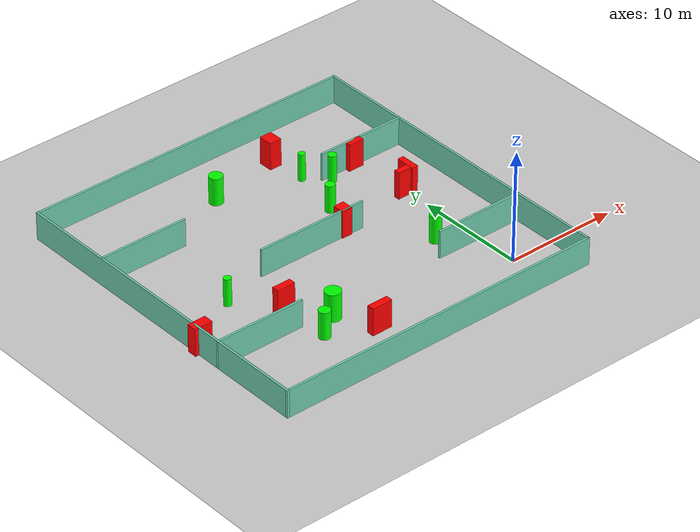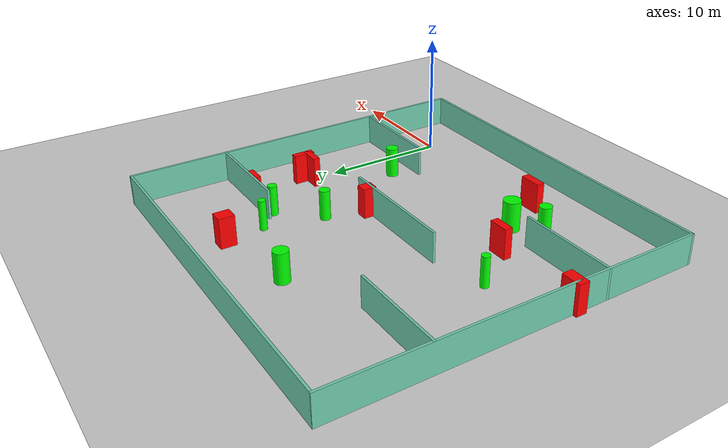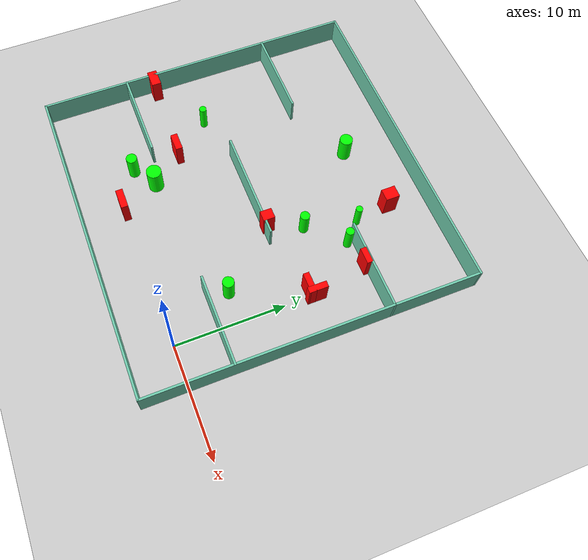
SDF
<sdf version="1.7">
 <world name="default">
  <light name="sun" type="directional">
   <pose>0 0 10 0 -0 0</pose>
   <diffuse>0.8 0.8 0.8 1</diffuse>
   <specular>0.2 0.2 0.2 1</specular>
   <attenuation>
    <range>1000</range>
    <constant>0.9</constant>
    <linear>0.01</linear>
    <quadratic>0.001</quadratic>
   </attenuation>
   <direction>-0.5 0.1 -0.9</direction>
   <spot><inner_angle>0</inner_angle><outer_angle>0</outer_angle><falloff>0</falloff></spot>
  </light>
  <model name="ground_plane">
   <static>1</static>
   <link name="link">
    <collision name="collision">
     <geometry><plane><normal>0 0 1</normal><size>100 100</size></plane></geometry>
     <surface>
      <contact><collide_bitmask>65535</collide_bitmask></contact>
      <friction><ode><mu>100</mu><mu2>50</mu2></ode></friction>
     </surface>
    </collision>
    <visual name="visual">
     <cast_shadows>0</cast_shadows>
     <geometry><plane><normal>0 0 1</normal><size>100 100</size></plane></geometry>
     <material>
      <script><uri>file://media/materials/scripts/gazebo.material</uri><name>Gazebo/Grey</name></script>
     </material>
    </visual>
   </link>
  </model>
  <gravity>0 0 -9.8</gravity>
  <magnetic_field>6e-06 2.3e-05 -4.2e-05</magnetic_field>
  <atmosphere type="adiabatic"/>
  <physics type="ode">
   <max_step_size>0.001</max_step_size>
   <real_time_factor>1</real_time_factor>
   <real_time_update_rate>1000</real_time_update_rate>
  </physics>
  <scene><ambient>0.4 0.4 0.4 1</ambient><background>0.7 0.7 0.7 1</background><shadows>1</shadows></scene>
  <spherical_coordinates>
   <surface_model>EARTH_WGS84</surface_model>
   <latitude_deg>0</latitude_deg>
   <longitude_deg>0</longitude_deg>
   <elevation>0</elevation>
   <heading_deg>0</heading_deg>
  </spherical_coordinates>
  <model name="my_base_walls">
   <link name="Wall_10">
    <collision name="Wall_10_Collision">
     <geometry><box><size>8.2 0.2 2.5</size></box></geometry>
     <pose>0 0 1.25 0 -0 0</pose>
    </collision>
    <visual name="Wall_10_Visual">
     <pose>0 0 1.25 0 -0 0</pose>
     <geometry><box><size>8.2 0.2 2.5</size></box></geometry>
     <material>
      <script><uri>file://media/materials/scripts/gazebo.material</uri><name>Gazebo/Grey</name></script>
      <ambient>0.435294 0.796078 0.67451 1</ambient>
     </material>
     <meta><layer>0</layer></meta>
    </visual>
    <pose>-11 -7 0 0 -0 0</pose>
   </link>
   <link name="Wall_12">
    <collision name="Wall_12_Collision">
     <geometry><box><size>8.2 0.2 2.5</size></box></geometry>
     <pose>0 0 1.25 0 -0 0</pose>
    </collision>
    <visual name="Wall_12_Visual">
     <pose>0 0 1.25 0 -0 0</pose>
     <geometry><box><size>8.2 0.2 2.5</size></box></geometry>
     <material>
      <script><uri>file://media/materials/scripts/gazebo.material</uri><name>Gazebo/Grey</name></script>
      <ambient>0.435294 0.796078 0.67451 1</ambient>
     </material>
     <meta><layer>0</layer></meta>
    </visual>
    <pose>-11 7 0 0 -0 0</pose>
   </link>
   <link name="Wall_14">
    <collision name="Wall_14_Collision">
     <geometry><box><size>8.2 0.2 2.5</size></box></geometry>
     <pose>0 0 1.25 0 -0 0</pose>
    </collision>
    <visual name="Wall_14_Visual">
     <pose>0 0 1.25 0 -0 0</pose>
     <geometry><box><size>8.2 0.2 2.5</size></box></geometry>
     <material>
      <script><uri>file://media/materials/scripts/gazebo.material</uri><name>Gazebo/Grey</name></script>
      <ambient>0.435294 0.796078 0.67451 1</ambient>
     </material>
     <meta><layer>0</layer></meta>
    </visual>
    <pose>11 7 0 0 -0 3.14159</pose>
   </link>
   <link name="Wall_16">
    <collision name="Wall_16_Collision">
     <geometry><box><size>10.2 0.2 2.5</size></box></geometry>
     <pose>0 0 1.25 0 -0 0</pose>
    </collision>
    <visual name="Wall_16_Visual">
     <pose>0 0 1.25 0 -0 0</pose>
     <geometry><box><size>10.2 0.2 2.5</size></box></geometry>
     <material>
      <script><uri>file://media/materials/scripts/gazebo.material</uri><name>Gazebo/Grey</name></script>
      <ambient>0.435294 0.796078 0.67451 1</ambient>
     </material>
     <meta><layer>0</layer></meta>
    </visual>
    <pose>0 0 0 0 -0 3.14159</pose>
   </link>
   <link name="Wall_2">
    <collision name="Wall_2_Collision">
     <geometry><box><size>30.2 0.2 2.5</size></box></geometry>
     <pose>0 0 1.25 0 -0 0</pose>
    </collision>
    <visual name="Wall_2_Visual">
     <pose>0 0 1.25 0 -0 0</pose>
     <geometry><box><size>30.2 0.2 2.5</size></box></geometry>
     <material>
      <script><uri>file://media/materials/scripts/gazebo.material</uri><name>Gazebo/Grey</name></script>
      <ambient>0.435294 0.796078 0.67451 1</ambient>
     </material>
     <meta><layer>0</layer></meta>
    </visual>
    <pose>0 -15 0 0 -0 3.14159</pose>
   </link>
   <link name="Wall_3">
    <collision name="Wall_3_Collision">
     <geometry><box><size>30.2 0.2 2.5</size></box></geometry>
     <pose>0 0 1.25 0 -0 0</pose>
    </collision>
    <visual name="Wall_3_Visual">
     <pose>0 0 1.25 0 -0 0</pose>
     <geometry><box><size>30.2 0.2 2.5</size></box></geometry>
     <material>
      <script><uri>file://media/materials/scripts/gazebo.material</uri><name>Gazebo/Grey</name></script>
      <ambient>0.435294 0.796078 0.67451 1</ambient>
     </material>
     <meta><layer>0</layer></meta>
    </visual>
    <pose>-15 0 0 0 -0 1.5708</pose>
   </link>
   <link name="Wall_4">
    <collision name="Wall_4_Collision">
     <geometry><box><size>30.2 0.2 2.5</size></box></geometry>
     <pose>0 0 1.25 0 -0 0</pose>
    </collision>
    <visual name="Wall_4_Visual">
     <pose>0 0 1.25 0 -0 0</pose>
     <geometry><box><size>30.2 0.2 2.5</size></box></geometry>
     <material>
      <script><uri>file://media/materials/scripts/gazebo.material</uri><name>Gazebo/Grey</name></script>
      <ambient>0.435294 0.796078 0.67451 1</ambient>
     </material>
     <meta><layer>0</layer></meta>
    </visual>
    <pose>0 15 0 0 -0 0</pose>
   </link>
   <link name="Wall_6">
    <collision name="Wall_6_Collision">
     <geometry><box><size>30.2 0.2 2.5</size></box></geometry>
     <pose>0 0 1.25 0 -0 0</pose>
    </collision>
    <visual name="Wall_6_Visual">
     <pose>0 0 1.25 0 -0 0</pose>
     <geometry><box><size>30.2 0.2 2.5</size></box></geometry>
     <material>
      <script><uri>file://media/materials/scripts/gazebo.material</uri><name>Gazebo/Grey</name></script>
      <ambient>0.435294 0.796078 0.67451 1</ambient>
     </material>
     <meta><layer>0</layer></meta>
    </visual>
    <pose>15 0 0 0 -0 1.5708</pose>
   </link>
   <link name="Wall_8">
    <collision name="Wall_8_Collision">
     <geometry><box><size>8.2 0.2 2.5</size></box></geometry>
     <pose>0 0 1.25 0 -0 0</pose>
    </collision>
    <visual name="Wall_8_Visual">
     <pose>0 0 1.25 0 -0 0</pose>
     <geometry><box><size>8.2 0.2 2.5</size></box></geometry>
     <material>
      <script><uri>file://media/materials/scripts/gazebo.material</uri><name>Gazebo/Grey</name></script>
      <ambient>0.435294 0.796078 0.67451 1</ambient>
     </material>
     <meta><layer>0</layer></meta>
    </visual>
    <pose>11 -7 0 0 -0 3.14159</pose>
   </link>
   <static>1</static>
   <pose>-11 11 0 0 -0 0</pose>
  </model>
  <model name="cylinder1">
   <static>1</static>
   <link name="link">
    <inertial>
     <mass>1</mass>
     <inertia><ixx>0.5</ixx><ixy>0</ixy><ixz>0</ixz><iyy>0.5</iyy><iyz>0</iyz><izz>1</izz></inertia>
    </inertial>
    <collision name="collision">
     <geometry><cylinder><radius>0.37215223948299025</radius><length>2.5</length></cylinder></geometry>
    </collision>
    <visual name="visual">
     <geometry><cylinder><radius>0.37215223948299025</radius><length>2.5</length></cylinder></geometry>
     <material>
      <ambient>0 1 0 1</ambient>
      <diffuse>0 1 0 1</diffuse>
      <specular>0.1 0.1 0.1 1</specular>
      <emissive>0 0 0 0</emissive>
     </material>
    </visual>
   </link>
   <pose>-3.4854072605742132 17.403984121580976 1.25 0 0 0</pose>
  </model>
  <model name="cylinder2">
   <static>1</static>
   <link name="link">
    <inertial>
     <mass>1</mass>
     <inertia><ixx>0.5</ixx><ixy>0</ixy><ixz>0</ixz><iyy>0.5</iyy><iyz>0</iyz><izz>1</izz></inertia>
    </inertial>
    <collision name="collision">
     <geometry><cylinder><radius>0.333183847070141</radius><length>2.5</length></cylinder></geometry>
    </collision>
    <visual name="visual">
     <geometry><cylinder><radius>0.333183847070141</radius><length>2.5</length></cylinder></geometry>
     <material>
      <ambient>0 1 0 1</ambient>
      <diffuse>0 1 0 1</diffuse>
      <specular>0.1 0.1 0.1 1</specular>
      <emissive>0 0 0 0</emissive>
     </material>
    </visual>
   </link>
   <pose>-20.36996918337472 9.804035120642062 1.25 0 0 0</pose>
  </model>
  <model name="cylinder3">
   <static>1</static>
   <link name="link">
    <inertial>
     <mass>1</mass>
     <inertia><ixx>0.5</ixx><ixy>0</ixy><ixz>0</ixz><iyy>0.5</iyy><iyz>0</iyz><izz>1</izz></inertia>
    </inertial>
    <collision name="collision">
     <geometry><cylinder><radius>0.42897565841203145</radius><length>2.5</length></cylinder></geometry>
    </collision>
    <visual name="visual">
     <geometry><cylinder><radius>0.42897565841203145</radius><length>2.5</length></cylinder></geometry>
     <material>
      <ambient>0 1 0 1</ambient>
      <diffuse>0 1 0 1</diffuse>
      <specular>0.1 0.1 0.1 1</specular>
      <emissive>0 0 0 0</emissive>
     </material>
    </visual>
   </link>
   <pose>-6.293158223914457 14.352922936030179 1.25 0 0 0</pose>
  </model>
  <model name="cylinder4">
   <static>1</static>
   <link name="link">
    <inertial>
     <mass>1</mass>
     <inertia><ixx>0.5</ixx><ixy>0</ixy><ixz>0</ixz><iyy>0.5</iyy><iyz>0</iyz><izz>1</izz></inertia>
    </inertial>
    <collision name="collision">
     <geometry><cylinder><radius>0.6943146130069109</radius><length>2.5</length></cylinder></geometry>
    </collision>
    <visual name="visual">
     <geometry><cylinder><radius>0.6943146130069109</radius><length>2.5</length></cylinder></geometry>
     <material>
      <ambient>0 1 0 1</ambient>
      <diffuse>0 1 0 1</diffuse>
      <specular>0.1 0.1 0.1 1</specular>
      <emissive>0 0 0 0</emissive>
     </material>
    </visual>
   </link>
   <pose>-15.37645692182866 3.3688888859838206 1.25 0 0 0</pose>
  </model>
  <model name="cylinder5">
   <static>1</static>
   <link name="link">
    <inertial>
     <mass>1</mass>
     <inertia><ixx>0.5</ixx><ixy>0</ixy><ixz>0</ixz><iyy>0.5</iyy><iyz>0</iyz><izz>1</izz></inertia>
    </inertial>
    <collision name="collision">
     <geometry><cylinder><radius>0.3059380228305129</radius><length>2.5</length></cylinder></geometry>
    </collision>
    <visual name="visual">
     <geometry><cylinder><radius>0.3059380228305129</radius><length>2.5</length></cylinder></geometry>
     <material>
      <ambient>0 1 0 1</ambient>
      <diffuse>0 1 0 1</diffuse>
      <specular>0.1 0.1 0.1 1</specular>
      <emissive>0 0 0 0</emissive>
     </material>
    </visual>
   </link>
   <pose>-5.208373326094149 19.08376229806097 1.25 0 0 0</pose>
  </model>
  <model name="cylinder6">
   <static>1</static>
   <link name="link">
    <inertial>
     <mass>1</mass>
     <inertia><ixx>0.5</ixx><ixy>0</ixy><ixz>0</ixz><iyy>0.5</iyy><iyz>0</iyz><izz>1</izz></inertia>
    </inertial>
    <collision name="collision">
     <geometry><cylinder><radius>0.597591681927181</radius><length>2.5</length></cylinder></geometry>
    </collision>
    <visual name="visual">
     <geometry><cylinder><radius>0.597591681927181</radius><length>2.5</length></cylinder></geometry>
     <material>
      <ambient>0 1 0 1</ambient>
      <diffuse>0 1 0 1</diffuse>
      <specular>0.1 0.1 0.1 1</specular>
      <emissive>0 0 0 0</emissive>
     </material>
    </visual>
   </link>
   <pose>-12.323717222869977 21.052269842131594 1.25 0 0 0</pose>
  </model>
  <model name="cylinder7">
   <static>1</static>
   <link name="link">
    <inertial>
     <mass>1</mass>
     <inertia><ixx>0.5</ixx><ixy>0</ixy><ixz>0</ixz><iyy>0.5</iyy><iyz>0</iyz><izz>1</izz></inertia>
    </inertial>
    <collision name="collision">
     <geometry><cylinder><radius>0.5080277660602867</radius><length>2.5</length></cylinder></geometry>
    </collision>
    <visual name="visual">
     <geometry><cylinder><radius>0.5080277660602867</radius><length>2.5</length></cylinder></geometry>
     <material>
      <ambient>0 1 0 1</ambient>
      <diffuse>0 1 0 1</diffuse>
      <specular>0.1 0.1 0.1 1</specular>
      <emissive>0 0 0 0</emissive>
     </material>
    </visual>
   </link>
   <pose>-2.7816024237399404 5.913493550221002 1.25 0 0 0</pose>
  </model>
  <model name="cylinder8">
   <static>1</static>
   <link name="link">
    <inertial>
     <mass>1</mass>
     <inertia><ixx>0.5</ixx><ixy>0</ixy><ixz>0</ixz><iyy>0.5</iyy><iyz>0</iyz><izz>1</izz></inertia>
    </inertial>
    <collision name="collision">
     <geometry><cylinder><radius>0.5047657749819048</radius><length>2.5</length></cylinder></geometry>
    </collision>
    <visual name="visual">
     <geometry><cylinder><radius>0.5047657749819048</radius><length>2.5</length></cylinder></geometry>
     <material>
      <ambient>0 1 0 1</ambient>
      <diffuse>0 1 0 1</diffuse>
      <specular>0.1 0.1 0.1 1</specular>
      <emissive>0 0 0 0</emissive>
     </material>
    </visual>
   </link>
   <pose>-17.448786303961565 1.8909902238019773 1.25 0 0 0</pose>
  </model>
  <model name="box1">
   <static>1</static>
   <link name="link">
    <inertial>
     <mass>1</mass>
     <inertia><ixx>0.083</ixx><ixy>0</ixy><ixz>0</ixz><iyy>0.083</iyy><iyz>0</iyz><izz>0.083</izz></inertia>
    </inertial>
    <collision name="collision">
     <geometry><box><size>1.646814002296343 0.8846157069024569 2.5</size></box></geometry>
    </collision>
    <visual name="visual">
     <geometry><box><size>1.646814002296343 0.8846157069024569 2.5</size></box></geometry>
     <material>
      <ambient>1 0 0 1</ambient>
      <diffuse>1 0 0 1</diffuse>
      <specular>0.1 0.1 0.1 1</specular>
      <emissive>0 0 0 0</emissive>
     </material>
    </visual>
    <sensor name="my_contact" type="contact">
     <contact><collision>box_collision</collision><topic>__default_topic__</topic></contact>
    </sensor>
   </link>
   <pose>-25.600002655101168 6.624869619537522 1.25 0 0 0</pose>
  </model>
  <model name="box2">
   <static>1</static>
   <link name="link">
    <inertial>
     <mass>1</mass>
     <inertia><ixx>0.083</ixx><ixy>0</ixy><ixz>0</ixz><iyy>0.083</iyy><iyz>0</iyz><izz>0.083</izz></inertia>
    </inertial>
    <collision name="collision">
     <geometry><box><size>1.1035924370785062 1.279597626355856 2.5</size></box></geometry>
    </collision>
    <visual name="visual">
     <geometry><box><size>1.1035924370785062 1.279597626355856 2.5</size></box></geometry>
     <material>
      <ambient>1 0 0 1</ambient>
      <diffuse>1 0 0 1</diffuse>
      <specular>0.1 0.1 0.1 1</specular>
      <emissive>0 0 0 0</emissive>
     </material>
    </visual>
    <sensor name="my_contact" type="contact">
     <contact><collision>box_collision</collision><topic>__default_topic__</topic></contact>
    </sensor>
   </link>
   <pose>-5.690783277207167 22.336671396697813 1.25 0 0 0</pose>
  </model>
  <model name="box3">
   <static>1</static>
   <link name="link">
    <inertial>
     <mass>1</mass>
     <inertia><ixx>0.083</ixx><ixy>0</ixy><ixz>0</ixz><iyy>0.083</iyy><iyz>0</iyz><izz>0.083</izz></inertia>
    </inertial>
    <collision name="collision">
     <geometry><box><size>1.8126860965214369 0.535252233556708 2.5</size></box></geometry>
    </collision>
    <visual name="visual">
     <geometry><box><size>1.8126860965214369 0.535252233556708 2.5</size></box></geometry>
     <material>
      <ambient>1 0 0 1</ambient>
      <diffuse>1 0 0 1</diffuse>
      <specular>0.1 0.1 0.1 1</specular>
      <emissive>0 0 0 0</emissive>
     </material>
    </visual>
    <sensor name="my_contact" type="contact">
     <contact><collision>box_collision</collision><topic>__default_topic__</topic></contact>
    </sensor>
   </link>
   <pose>-0.3155098547601547 12.27204238082926 1.25 0 0 0</pose>
  </model>
  <model name="box4">
   <static>1</static>
   <link name="link">
    <inertial>
     <mass>1</mass>
     <inertia><ixx>0.083</ixx><ixy>0</ixy><ixz>0</ixz><iyy>0.083</iyy><iyz>0</iyz><izz>0.083</izz></inertia>
    </inertial>
    <collision name="collision">
     <geometry><box><size>0.9678695154262009 1.0719222192508677 2.5</size></box></geometry>
    </collision>
    <visual name="visual">
     <geometry><box><size>0.9678695154262009 1.0719222192508677 2.5</size></box></geometry>
     <material>
      <ambient>1 0 0 1</ambient>
      <diffuse>1 0 0 1</diffuse>
      <specular>0.1 0.1 0.1 1</specular>
      <emissive>0 0 0 0</emissive>
     </material>
    </visual>
    <sensor name="my_contact" type="contact">
     <contact><collision>box_collision</collision><topic>__default_topic__</topic></contact>
    </sensor>
   </link>
   <pose>-7.576512298385499 11.321688304775721 1.25 0 0 0</pose>
  </model>
  <model name="box5">
   <static>1</static>
   <link name="link">
    <inertial>
     <mass>1</mass>
     <inertia><ixx>0.083</ixx><ixy>0</ixy><ixz>0</ixz><iyy>0.083</iyy><iyz>0</iyz><izz>0.083</izz></inertia>
    </inertial>
    <collision name="collision">
     <geometry><box><size>1.8618033287663822 0.6441878179282203 2.5</size></box></geometry>
    </collision>
    <visual name="visual">
     <geometry><box><size>1.8618033287663822 0.6441878179282203 2.5</size></box></geometry>
     <material>
      <ambient>1 0 0 1</ambient>
      <diffuse>1 0 0 1</diffuse>
      <specular>0.1 0.1 0.1 1</specular>
      <emissive>0 0 0 0</emissive>
     </material>
    </visual>
    <sensor name="my_contact" type="contact">
     <contact><collision>box_collision</collision><topic>__default_topic__</topic></contact>
    </sensor>
   </link>
   <pose>-13.710171949849672 -0.11275257442411402 1.25 0 0 0</pose>
  </model>
  <model name="box6">
   <static>1</static>
   <link name="link">
    <inertial>
     <mass>1</mass>
     <inertia><ixx>0.083</ixx><ixy>0</ixy><ixz>0</ixz><iyy>0.083</iyy><iyz>0</iyz><izz>0.083</izz></inertia>
    </inertial>
    <collision name="collision">
     <geometry><box><size>1.4436893465971299 0.5415942474762894 2.5</size></box></geometry>
    </collision>
    <visual name="visual">
     <geometry><box><size>1.4436893465971299 0.5415942474762894 2.5</size></box></geometry>
     <material>
      <ambient>1 0 0 1</ambient>
      <diffuse>1 0 0 1</diffuse>
      <specular>0.1 0.1 0.1 1</specular>
      <emissive>0 0 0 0</emissive>
     </material>
    </visual>
    <sensor name="my_contact" type="contact">
     <contact><collision>box_collision</collision><topic>__default_topic__</topic></contact>
    </sensor>
   </link>
   <pose>-0.9103775904340665 17.750545332208873 1.25 0 0 0</pose>
  </model>
  <model name="box7">
   <static>1</static>
   <link name="link">
    <inertial>
     <mass>1</mass>
     <inertia><ixx>0.083</ixx><ixy>0</ixy><ixz>0</ixz><iyy>0.083</iyy><iyz>0</iyz><izz>0.083</izz></inertia>
    </inertial>
    <collision name="collision">
     <geometry><box><size>0.5621801262240806 1.7275425796904853 2.5</size></box></geometry>
    </collision>
    <visual name="visual">
     <geometry><box><size>0.5621801262240806 1.7275425796904853 2.5</size></box></geometry>
     <material>
      <ambient>1 0 0 1</ambient>
      <diffuse>1 0 0 1</diffuse>
      <specular>0.1 0.1 0.1 1</specular>
      <emissive>0 0 0 0</emissive>
     </material>
    </visual>
    <sensor name="my_contact" type="contact">
     <contact><collision>box_collision</collision><topic>__default_topic__</topic></contact>
    </sensor>
   </link>
   <pose>0.3083551833883931 12.71612621972607 1.25 0 0 0</pose>
  </model>
  <model name="box8">
   <static>1</static>
   <link name="link">
    <inertial>
     <mass>1</mass>
     <inertia><ixx>0.083</ixx><ixy>0</ixy><ixz>0</ixz><iyy>0.083</iyy><iyz>0</iyz><izz>0.083</izz></inertia>
    </inertial>
    <collision name="collision">
     <geometry><box><size>1.6700973140140065 0.6353282782074446 2.5</size></box></geometry>
    </collision>
    <visual name="visual">
     <geometry><box><size>1.6700973140140065 0.6353282782074446 2.5</size></box></geometry>
     <material>
      <ambient>1 0 0 1</ambient>
      <diffuse>1 0 0 1</diffuse>
      <specular>0.1 0.1 0.1 1</specular>
      <emissive>0 0 0 0</emissive>
     </material>
    </visual>
    <sensor name="my_contact" type="contact">
     <contact><collision>box_collision</collision><topic>__default_topic__</topic></contact>
    </sensor>
   </link>
   <pose>-17.735296538084846 6.309191908405589 1.25 0 0 0</pose>
  </model>
 </world>
</sdf>
